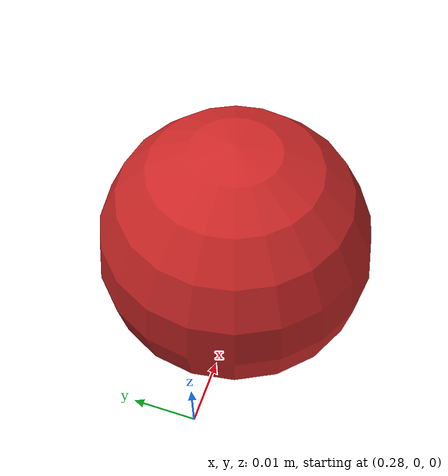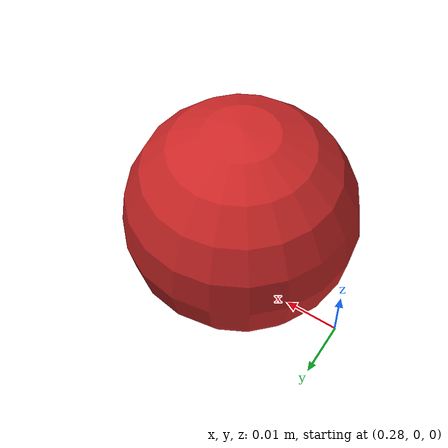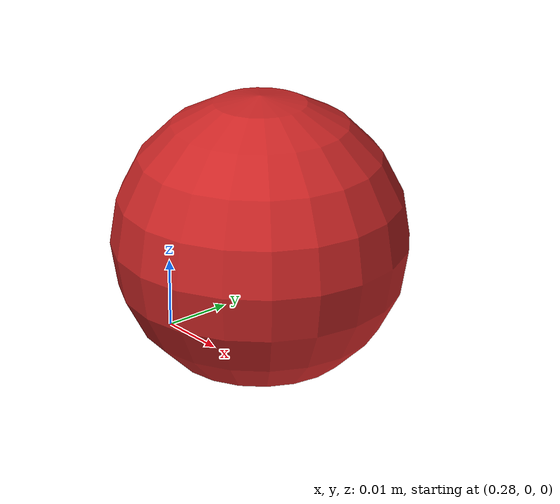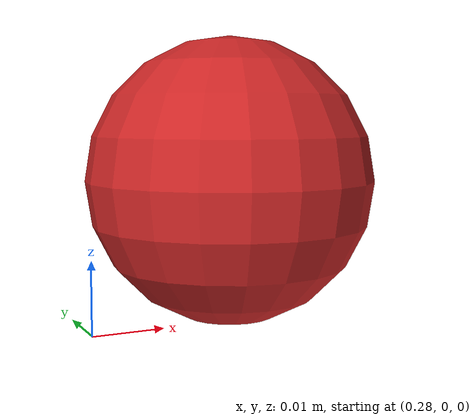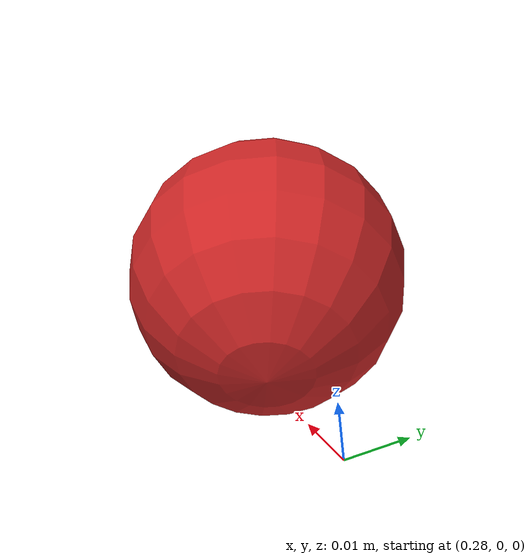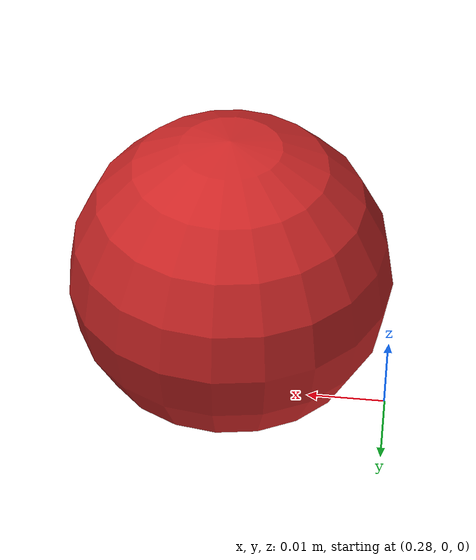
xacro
<?xml version="1.0"?>
<robot name="ball1" xmlns:xacro="http:/www.ros.org/wiki/xacro">

  <xacro:include filename="$(find test_gazebo_camera)/urdf/ball1.gazebo"/>
  <xacro:include filename="$(find test_gazebo_camera)/urdf/materials.xacro"/>
  <xacro:property name="x" value="0.3"/>
  <xacro:property name="y" value="0.0"/>
  <xacro:property name="r" value="0.02"/>

  <xacro:property name="z" value="${r}"/>

  <link name="link1">
    <collision>
      <origin xyz = "${x} ${y} ${z}" rpy="0 0 0"/>
      <geometry>
        <sphere radius="${r}"/>
      </geometry>
    </collision>

    <visual>
      <origin xyz = "${x} ${y} ${z}" rpy="0 0 0"/>
      <geometry>
        <sphere radius="${r}"/>
      </geometry>
      <material name="red"/>
    </visual>

    <inertial>
      <mass value = "0.005"/>
      <origin xyz = "${x} ${y} ${z}" rpy="0 0 0"/>
      <inertia ixx="0.0001" ixy = "0" ixz = "0" iyy= "0.0001" iyz="0" izz="0.0001"/>
    </inertial>
  </link>
</robot>
